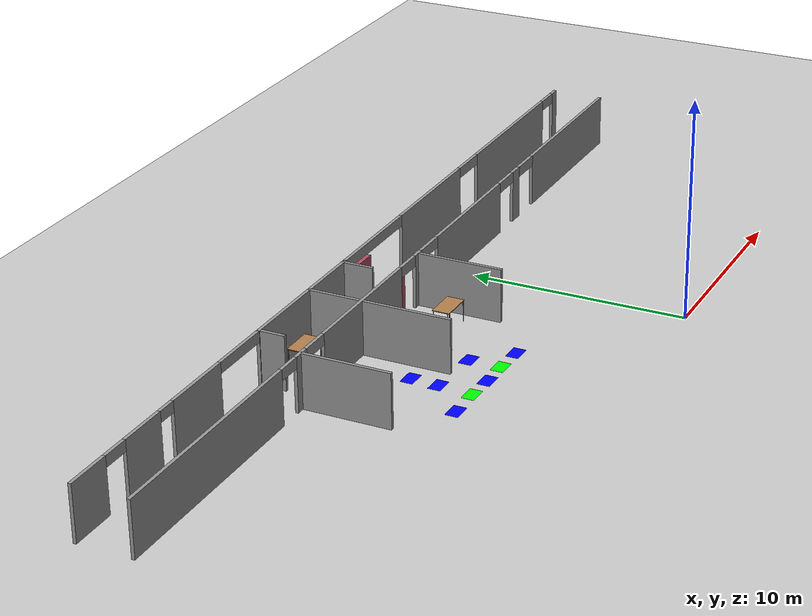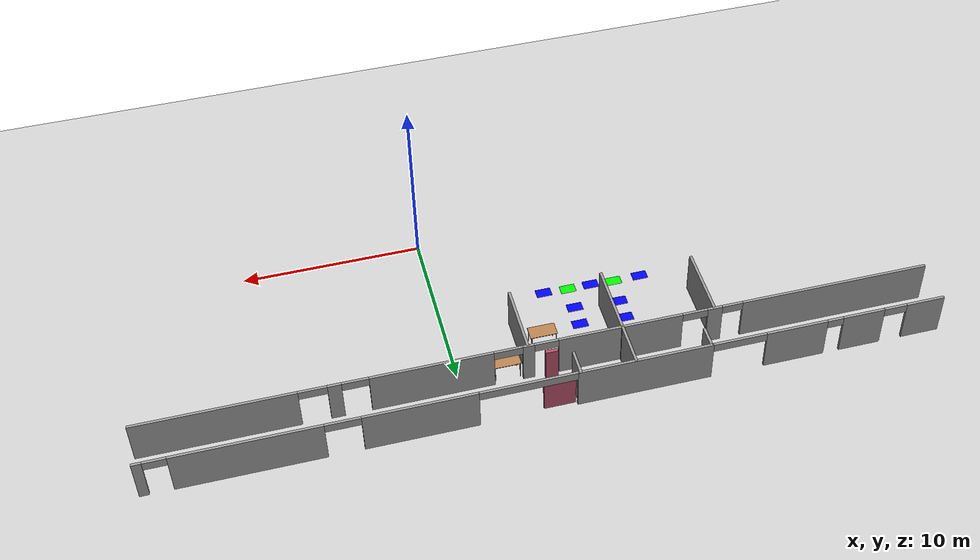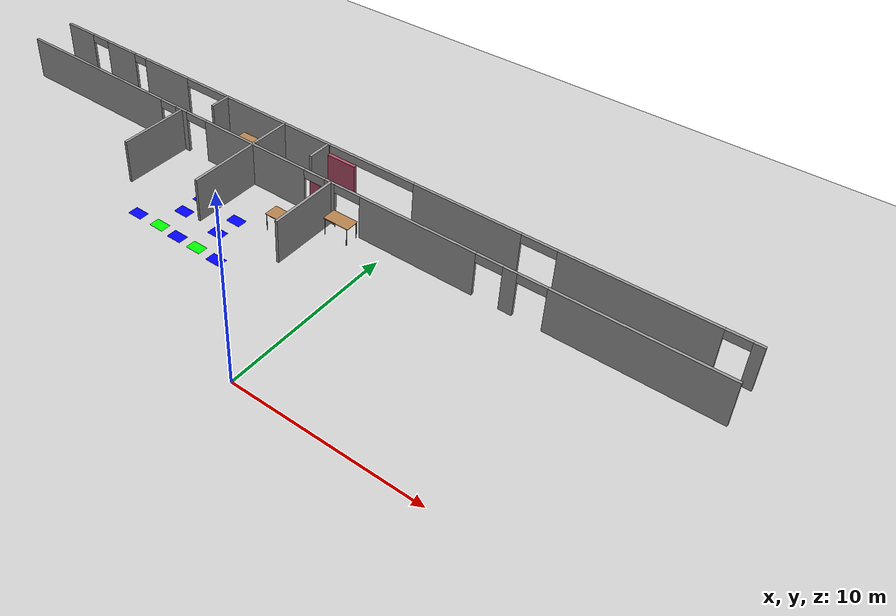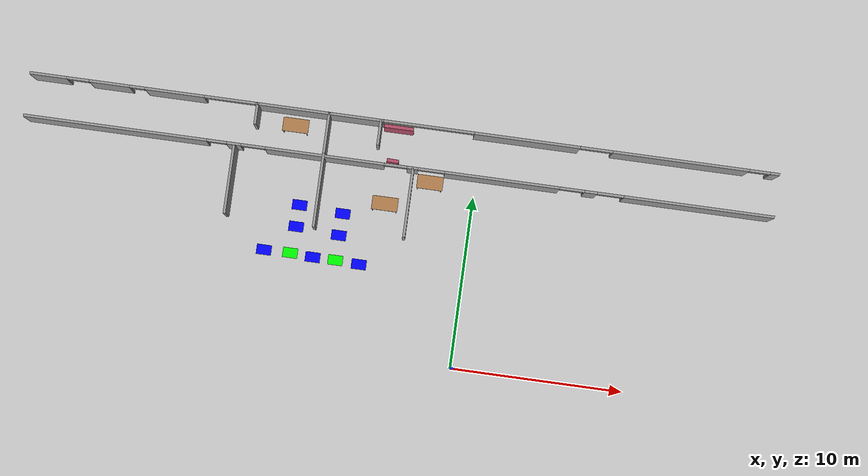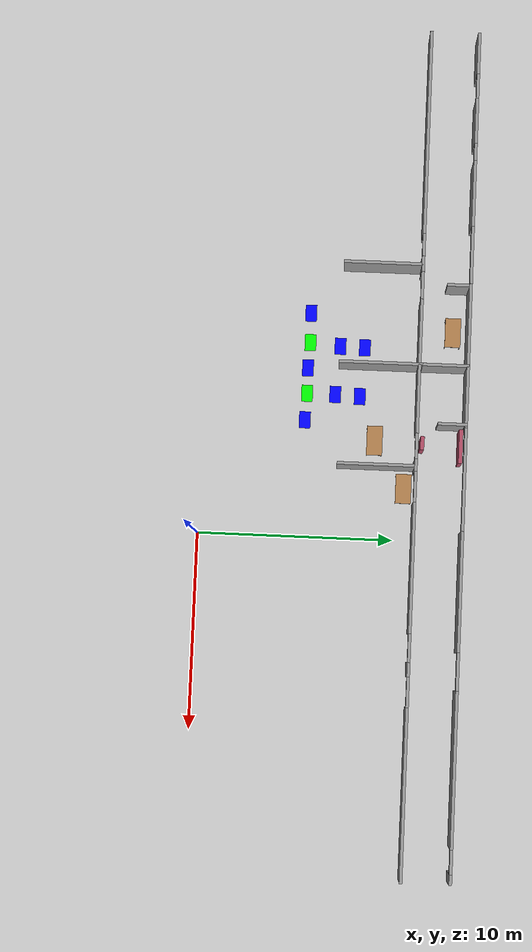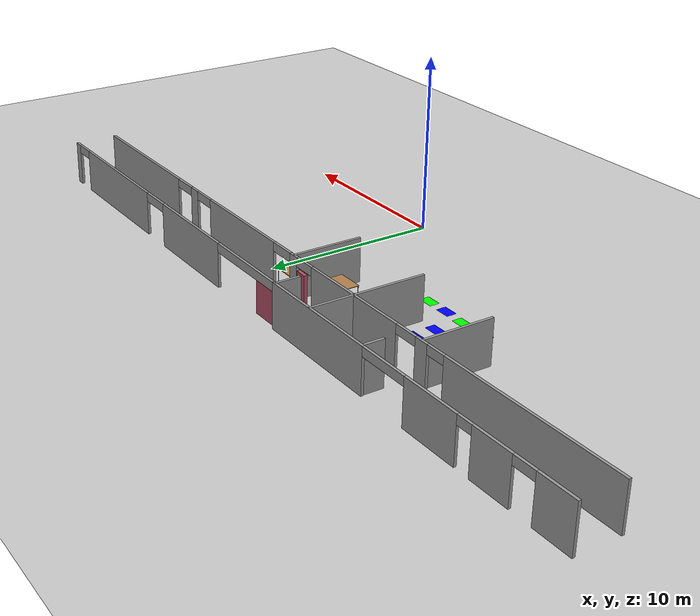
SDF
<sdf version="1.6">
 <world name="default">
  <model name="ground_plane">
   <pose>0 0 0.001 0 -0 0</pose>
   <static>1</static>
   <link name="link">
    <collision name="collision">
     <geometry><plane><normal>0 0 1</normal><size>100 100</size></plane></geometry>
     <surface><friction><ode><mu>100</mu><mu2>50</mu2></ode></friction></surface>
    </collision>
    <visual name="visual">
     <cast_shadows>0</cast_shadows>
     <geometry><plane><normal>0 0 1</normal><size>100 100</size></plane></geometry>
     <material>
      <script><uri>file://media/materials/scripts/gazebo.material</uri><name>Gazebo/Grey</name></script>
     </material>
    </visual>
   </link>
  </model>
  <model name="table_3">
   <static>1</static>
   <link name="link">
    <collision name="surface">
     <pose>0 0 1 0 -0 0</pose>
     <geometry><box><size>1.5 0.8 0.03</size></box></geometry>
     <surface><friction><ode><mu>0.6</mu><mu2>0.6</mu2></ode></friction></surface>
    </collision>
    <visual name="visual1">
     <pose>0 0 1 0 -0 0</pose>
     <geometry><box><size>1.5 0.8 0.03</size></box></geometry>
     <material>
      <script><uri>file://media/materials/scripts/gazebo.material</uri><name>Gazebo/Wood</name></script>
     </material>
    </visual>
    <collision name="front_left_leg">
     <pose>0.68 0.38 0.5 0 -0 0</pose>
     <geometry><cylinder><radius>0.02</radius><length>1</length></cylinder></geometry>
    </collision>
    <visual name="front_left_leg">
     <pose>0.68 0.38 0.5 0 -0 0</pose>
     <geometry><cylinder><radius>0.02</radius><length>1</length></cylinder></geometry>
     <material>
      <script><uri>file://media/materials/scripts/gazebo.material</uri><name>Gazebo/Grey</name></script>
     </material>
    </visual>
    <collision name="front_right_leg">
     <pose>0.68 -0.38 0.5 0 -0 0</pose>
     <geometry><cylinder><radius>0.02</radius><length>1</length></cylinder></geometry>
    </collision>
    <visual name="front_right_leg">
     <pose>0.68 -0.38 0.5 0 -0 0</pose>
     <geometry><cylinder><radius>0.02</radius><length>1</length></cylinder></geometry>
     <material>
      <script><uri>file://media/materials/scripts/gazebo.material</uri><name>Gazebo/Grey</name></script>
     </material>
    </visual>
    <collision name="back_right_leg">
     <pose>-0.68 -0.38 0.5 0 -0 0</pose>
     <geometry><cylinder><radius>0.02</radius><length>1</length></cylinder></geometry>
    </collision>
    <visual name="back_right_leg">
     <pose>-0.68 -0.38 0.5 0 -0 0</pose>
     <geometry><cylinder><radius>0.02</radius><length>1</length></cylinder></geometry>
     <material>
      <script><uri>file://media/materials/scripts/gazebo.material</uri><name>Gazebo/Grey</name></script>
     </material>
    </visual>
    <collision name="back_left_leg">
     <pose>-0.68 0.38 0.5 0 -0 0</pose>
     <geometry><cylinder><radius>0.02</radius><length>1</length></cylinder></geometry>
    </collision>
    <visual name="back_left_leg">
     <pose>-0.68 0.38 0.5 0 -0 0</pose>
     <geometry><cylinder><radius>0.02</radius><length>1</length></cylinder></geometry>
     <material>
      <script><uri>file://media/materials/scripts/gazebo.material</uri><name>Gazebo/Grey</name></script>
     </material>
    </visual>
   </link>
   <pose>-10.736 12.6995 0.001 0 -0 0</pose>
  </model>
  <model name="table_4">
   <static>1</static>
   <link name="link">
    <collision name="surface">
     <pose>0 0 1 0 -0 0</pose>
     <geometry><box><size>1.5 0.8 0.03</size></box></geometry>
     <surface><friction><ode><mu>0.6</mu><mu2>0.6</mu2></ode></friction></surface>
    </collision>
    <visual name="visual1">
     <pose>0 0 1 0 -0 0</pose>
     <geometry><box><size>1.5 0.8 0.03</size></box></geometry>
     <material>
      <script><uri>file://media/materials/scripts/gazebo.material</uri><name>Gazebo/Wood</name></script>
     </material>
    </visual>
    <collision name="front_left_leg">
     <pose>0.68 0.38 0.5 0 -0 0</pose>
     <geometry><cylinder><radius>0.02</radius><length>1</length></cylinder></geometry>
    </collision>
    <visual name="front_left_leg">
     <pose>0.68 0.38 0.5 0 -0 0</pose>
     <geometry><cylinder><radius>0.02</radius><length>1</length></cylinder></geometry>
     <material>
      <script><uri>file://media/materials/scripts/gazebo.material</uri><name>Gazebo/Grey</name></script>
     </material>
    </visual>
    <collision name="front_right_leg">
     <pose>0.68 -0.38 0.5 0 -0 0</pose>
     <geometry><cylinder><radius>0.02</radius><length>1</length></cylinder></geometry>
    </collision>
    <visual name="front_right_leg">
     <pose>0.68 -0.38 0.5 0 -0 0</pose>
     <geometry><cylinder><radius>0.02</radius><length>1</length></cylinder></geometry>
     <material>
      <script><uri>file://media/materials/scripts/gazebo.material</uri><name>Gazebo/Grey</name></script>
     </material>
    </visual>
    <collision name="back_right_leg">
     <pose>-0.68 -0.38 0.5 0 -0 0</pose>
     <geometry><cylinder><radius>0.02</radius><length>1</length></cylinder></geometry>
    </collision>
    <visual name="back_right_leg">
     <pose>-0.68 -0.38 0.5 0 -0 0</pose>
     <geometry><cylinder><radius>0.02</radius><length>1</length></cylinder></geometry>
     <material>
      <script><uri>file://media/materials/scripts/gazebo.material</uri><name>Gazebo/Grey</name></script>
     </material>
    </visual>
    <collision name="back_left_leg">
     <pose>-0.68 0.38 0.5 0 -0 0</pose>
     <geometry><cylinder><radius>0.02</radius><length>1</length></cylinder></geometry>
    </collision>
    <visual name="back_left_leg">
     <pose>-0.68 0.38 0.5 0 -0 0</pose>
     <geometry><cylinder><radius>0.02</radius><length>1</length></cylinder></geometry>
     <material>
      <script><uri>file://media/materials/scripts/gazebo.material</uri><name>Gazebo/Grey</name></script>
     </material>
    </visual>
   </link>
   <pose>-5.01771 8.89432 0.001 0 -0 0</pose>
  </model>
  <model name="table_7">
   <static>1</static>
   <link name="link">
    <collision name="surface">
     <pose>0 0 1 0 -0 0</pose>
     <geometry><box><size>1.5 0.8 0.03</size></box></geometry>
     <surface><friction><ode><mu>0.6</mu><mu2>0.6</mu2></ode></friction></surface>
    </collision>
    <visual name="visual1">
     <pose>0 0 1 0 -0 0</pose>
     <geometry><box><size>1.5 0.8 0.03</size></box></geometry>
     <material>
      <script><uri>file://media/materials/scripts/gazebo.material</uri><name>Gazebo/Wood</name></script>
     </material>
    </visual>
    <collision name="front_left_leg">
     <pose>0.68 0.38 0.5 0 -0 0</pose>
     <geometry><cylinder><radius>0.02</radius><length>1</length></cylinder></geometry>
    </collision>
    <visual name="front_left_leg">
     <pose>0.68 0.38 0.5 0 -0 0</pose>
     <geometry><cylinder><radius>0.02</radius><length>1</length></cylinder></geometry>
     <material>
      <script><uri>file://media/materials/scripts/gazebo.material</uri><name>Gazebo/Grey</name></script>
     </material>
    </visual>
    <collision name="front_right_leg">
     <pose>0.68 -0.38 0.5 0 -0 0</pose>
     <geometry><cylinder><radius>0.02</radius><length>1</length></cylinder></geometry>
    </collision>
    <visual name="front_right_leg">
     <pose>0.68 -0.38 0.5 0 -0 0</pose>
     <geometry><cylinder><radius>0.02</radius><length>1</length></cylinder></geometry>
     <material>
      <script><uri>file://media/materials/scripts/gazebo.material</uri><name>Gazebo/Grey</name></script>
     </material>
    </visual>
    <collision name="back_right_leg">
     <pose>-0.68 -0.38 0.5 0 -0 0</pose>
     <geometry><cylinder><radius>0.02</radius><length>1</length></cylinder></geometry>
    </collision>
    <visual name="back_right_leg">
     <pose>-0.68 -0.38 0.5 0 -0 0</pose>
     <geometry><cylinder><radius>0.02</radius><length>1</length></cylinder></geometry>
     <material>
      <script><uri>file://media/materials/scripts/gazebo.material</uri><name>Gazebo/Grey</name></script>
     </material>
    </visual>
    <collision name="back_left_leg">
     <pose>-0.68 0.38 0.5 0 -0 0</pose>
     <geometry><cylinder><radius>0.02</radius><length>1</length></cylinder></geometry>
    </collision>
    <visual name="back_left_leg">
     <pose>-0.68 0.38 0.5 0 -0 0</pose>
     <geometry><cylinder><radius>0.02</radius><length>1</length></cylinder></geometry>
     <material>
      <script><uri>file://media/materials/scripts/gazebo.material</uri><name>Gazebo/Grey</name></script>
     </material>
    </visual>
   </link>
   <pose>-2.6011 10.4538 0.001 0 -0 0</pose>
  </model>
  <model name="doorInside_10">
   <link name="link">
    <pose>0.712274 -0.220649 0.216958 0 -0 0</pose>
    <inertial>
     <mass>0.840612</mass>
     <inertia>
      <ixx>0.178476</ixx>
      <ixy>0</ixy>
      <ixz>0</ixz>
      <iyy>0.140406</iyy>
      <iyz>0</iyz>
      <izz>0.102032</izz>
     </inertia>
     <pose>0 0 0.001 0 -0 0</pose>
    </inertial>
    <visual name="visual">
     <geometry><box><size>0.675678 0.198843 2.05986</size></box></geometry>
     <material>
      <script><name>Gazebo/Grey</name><uri>file://media/materials/scripts/gazebo.material</uri></script>
      <ambient>0.7 0.3 0.4 1</ambient>
      <diffuse>0.7 0.7 0.7 1</diffuse>
      <specular>0.01 0.01 0.01 1</specular>
      <emissive>1 0 0 1</emissive>
      <shader type="vertex"><normal_map>__default__</normal_map></shader>
      <lighting>0</lighting>
     </material>
     <pose>0 0 0.001 0 -0 0</pose>
    </visual>
    <collision name="collision">
     <pose>0 0 0.001 0 -0 0</pose>
     <geometry><box><size>0.675678 0.198843 2.05986</size></box></geometry>
     <surface>
      <friction>
       <ode><mu>1</mu><mu2>1</mu2><fdir1>0 0 0</fdir1><slip1>0</slip1><slip2>0</slip2></ode>
       <torsional>
        <coefficient>1</coefficient>
        <patch_radius>0</patch_radius>
        <surface_radius>0</surface_radius>
        <use_patch_radius>1</use_patch_radius>
        <ode><slip>0</slip></ode>
       </torsional>
      </friction>
      <bounce><restitution_coefficient>0</restitution_coefficient><threshold>1e+06</threshold></bounce>
      <contact>
       <collide_without_contact>0</collide_without_contact>
       <collide_without_contact_bitmask>1</collide_without_contact_bitmask>
       <collide_bitmask>1</collide_bitmask>
       <ode>
        <soft_cfm>0</soft_cfm>
        <soft_erp>0.2</soft_erp>
        <kp>1e+13</kp>
        <kd>1</kd>
        <max_vel>0.01</max_vel>
        <min_depth>0</min_depth>
       </ode>
       <bullet>
        <split_impulse>1</split_impulse>
        <split_impulse_penetration_threshold>-0.01</split_impulse_penetration_threshold>
        <soft_cfm>0</soft_cfm>
        <soft_erp>0.2</soft_erp>
        <kp>1e+13</kp>
        <kd>1</kd>
       </bullet>
      </contact>
     </surface>
    </collision>
   </link>
   <static>0</static>
   <pose>-5.58854 11.5499 0.811964 1e-06 -1e-06 -0.037116</pose>
  </model>
  <model name="corridor_16">
   <link name="link">
    <pose>0 0 0.001 0 -0 0</pose>
    <inertial>
     <mass>0.0352517</mass>
     <inertia>
      <ixx>0.00099707</ixx>
      <ixy>0</ixy>
      <ixz>0</ixz>
      <iyy>0.00220147</iyy>
      <iyz>0</iyz>
      <izz>0.0031692</izz>
     </inertia>
     <pose>0 0 0.001 0 -0 0</pose>
    </inertial>
    <visual name="visual">
     <geometry><box><size>0.862743 0.578289 1e-06</size></box></geometry>
     <material>
      <script><name>Gazebo/Grey</name><uri>file://media/materials/scripts/gazebo.material</uri></script>
      <ambient>0 1 0 1</ambient>
      <diffuse>0 1 0 1</diffuse>
      <specular>0 1 0 1</specular>
      <emissive>0 1 0 1</emissive>
      <shader type="vertex"><normal_map>__default__</normal_map></shader>
     </material>
     <pose>0 0 0.001 0 -0 0</pose>
    </visual>
    <collision name="collision">
     <pose>0 0 0.001 0 -0 0</pose>
     <geometry><box><size>0.862743 0.578289 0.000477</size></box></geometry>
     <surface>
      <friction>
       <ode><mu>1</mu><mu2>1</mu2><fdir1>0 0 0</fdir1><slip1>0</slip1><slip2>0</slip2></ode>
       <torsional>
        <coefficient>1</coefficient>
        <patch_radius>0</patch_radius>
        <surface_radius>0</surface_radius>
        <use_patch_radius>1</use_patch_radius>
        <ode><slip>0</slip></ode>
       </torsional>
      </friction>
      <bounce><restitution_coefficient>0</restitution_coefficient><threshold>1e+06</threshold></bounce>
      <contact>
       <collide_without_contact>0</collide_without_contact>
       <collide_without_contact_bitmask>1</collide_without_contact_bitmask>
       <collide_bitmask>1</collide_bitmask>
       <ode>
        <soft_cfm>0</soft_cfm>
        <soft_erp>0.2</soft_erp>
        <kp>1e+13</kp>
        <kd>1</kd>
        <max_vel>0.01</max_vel>
        <min_depth>0</min_depth>
       </ode>
       <bullet>
        <split_impulse>1</split_impulse>
        <split_impulse_penetration_threshold>-0.01</split_impulse_penetration_threshold>
        <soft_cfm>0</soft_cfm>
        <soft_erp>0.2</soft_erp>
        <kp>1e+13</kp>
        <kd>1</kd>
       </bullet>
      </contact>
     </surface>
    </collision>
   </link>
   <static>1</static>
   <pose>-7.44314 5.32852 0 0 -0 0</pose>
  </model>
  <model name="intersection_26">
   <link name="link">
    <pose>0 0 0.001 0 -0 0</pose>
    <inertial>
     <mass>0.0352517</mass>
     <inertia>
      <ixx>0.000997067</ixx>
      <ixy>0</ixy>
      <ixz>0</ixz>
      <iyy>0.00220147</iyy>
      <iyz>0</iyz>
      <izz>0.0031692</izz>
     </inertia>
     <pose>0 0 0.001 0 -0 0</pose>
    </inertial>
    <visual name="visual">
     <geometry><box><size>0.862743 0.578289 1e-06</size></box></geometry>
     <material>
      <script><name>Gazebo/Grey</name><uri>file://media/materials/scripts/gazebo.material</uri></script>
      <ambient>0 0 1 1</ambient>
      <diffuse>0 0 1 1</diffuse>
      <specular>0 0 1 1</specular>
      <emissive>0 0 1 1</emissive>
      <shader type="vertex"><normal_map>__default__</normal_map></shader>
     </material>
     <pose>0 0 0.001 0 -0 0</pose>
    </visual>
    <collision name="collision">
     <pose>0 0 0.001 0 -0 0</pose>
     <geometry><box><size>0.862743 0.578289 0.000477</size></box></geometry>
     <surface>
      <friction>
       <ode><mu>1</mu><mu2>1</mu2><fdir1>0 0 0</fdir1><slip1>0</slip1><slip2>0</slip2></ode>
       <torsional>
        <coefficient>1</coefficient>
        <patch_radius>0</patch_radius>
        <surface_radius>0</surface_radius>
        <use_patch_radius>1</use_patch_radius>
        <ode><slip>0</slip></ode>
       </torsional>
      </friction>
      <bounce><restitution_coefficient>0</restitution_coefficient><threshold>1e+06</threshold></bounce>
      <contact>
       <collide_without_contact>0</collide_without_contact>
       <collide_without_contact_bitmask>1</collide_without_contact_bitmask>
       <collide_bitmask>1</collide_bitmask>
       <ode>
        <soft_cfm>0</soft_cfm>
        <soft_erp>0.2</soft_erp>
        <kp>1e+13</kp>
        <kd>1</kd>
        <max_vel>0.01</max_vel>
        <min_depth>0</min_depth>
       </ode>
       <bullet>
        <split_impulse>1</split_impulse>
        <split_impulse_penetration_threshold>-0.01</split_impulse_penetration_threshold>
        <soft_cfm>0</soft_cfm>
        <soft_erp>0.2</soft_erp>
        <kp>1e+13</kp>
        <kd>1</kd>
       </bullet>
      </contact>
     </surface>
    </collision>
   </link>
   <static>1</static>
   <pose>-7.44042 6.78439 0 0 -0 0</pose>
  </model>
  <model name="corridor_17">
   <link name="link">
    <pose>0 0 0.001 0 -0 0</pose>
    <inertial>
     <mass>0.0352517</mass>
     <inertia>
      <ixx>0.00099707</ixx>
      <ixy>0</ixy>
      <ixz>0</ixz>
      <iyy>0.00220147</iyy>
      <iyz>0</iyz>
      <izz>0.0031692</izz>
     </inertia>
     <pose>0 0 0.001 0 -0 0</pose>
    </inertial>
    <visual name="visual">
     <geometry><box><size>0.862743 0.578289 1e-06</size></box></geometry>
     <material>
      <script><name>Gazebo/Grey</name><uri>file://media/materials/scripts/gazebo.material</uri></script>
      <ambient>0 1 0 1</ambient>
      <diffuse>0 1 0 1</diffuse>
      <specular>0 1 0 1</specular>
      <emissive>0 1 0 1</emissive>
      <shader type="vertex"><normal_map>__default__</normal_map></shader>
     </material>
     <pose>0 0 0.001 0 -0 0</pose>
    </visual>
    <collision name="collision">
     <pose>0 0 0.001 0 -0 0</pose>
     <geometry><box><size>0.862743 0.578289 0.000477</size></box></geometry>
     <surface>
      <friction>
       <ode><mu>1</mu><mu2>1</mu2><fdir1>0 0 0</fdir1><slip1>0</slip1><slip2>0</slip2></ode>
       <torsional>
        <coefficient>1</coefficient>
        <patch_radius>0</patch_radius>
        <surface_radius>0</surface_radius>
        <use_patch_radius>1</use_patch_radius>
        <ode><slip>0</slip></ode>
       </torsional>
      </friction>
      <bounce><restitution_coefficient>0</restitution_coefficient><threshold>1e+06</threshold></bounce>
      <contact>
       <collide_without_contact>0</collide_without_contact>
       <collide_without_contact_bitmask>1</collide_without_contact_bitmask>
       <collide_bitmask>1</collide_bitmask>
       <ode>
        <soft_cfm>0</soft_cfm>
        <soft_erp>0.2</soft_erp>
        <kp>1e+13</kp>
        <kd>1</kd>
        <max_vel>0.01</max_vel>
        <min_depth>0</min_depth>
       </ode>
       <bullet>
        <split_impulse>1</split_impulse>
        <split_impulse_penetration_threshold>-0.01</split_impulse_penetration_threshold>
        <soft_cfm>0</soft_cfm>
        <soft_erp>0.2</soft_erp>
        <kp>1e+13</kp>
        <kd>1</kd>
       </bullet>
      </contact>
     </surface>
    </collision>
   </link>
   <static>1</static>
   <pose>-10.0982 5.39888 0 0 -0 0</pose>
  </model>
  <model name="intersection_27">
   <link name="link">
    <pose>0 0 0.001 0 -0 0</pose>
    <inertial>
     <mass>0.0352517</mass>
     <inertia>
      <ixx>0.000997067</ixx>
      <ixy>0</ixy>
      <ixz>0</ixz>
      <iyy>0.00220147</iyy>
      <iyz>0</iyz>
      <izz>0.0031692</izz>
     </inertia>
     <pose>0 0 0.001 0 -0 0</pose>
    </inertial>
    <visual name="visual">
     <geometry><box><size>0.862743 0.578289 1e-06</size></box></geometry>
     <material>
      <script><name>Gazebo/Grey</name><uri>file://media/materials/scripts/gazebo.material</uri></script>
      <ambient>0 0 1 1</ambient>
      <diffuse>0 0 1 1</diffuse>
      <specular>0 0 1 1</specular>
      <emissive>0 0 1 1</emissive>
      <shader type="vertex"><normal_map>__default__</normal_map></shader>
     </material>
     <pose>0 0 0.001 0 -0 0</pose>
    </visual>
    <collision name="collision">
     <pose>0 0 0.001 0 -0 0</pose>
     <geometry><box><size>0.862743 0.578289 0.000477</size></box></geometry>
     <surface>
      <friction>
       <ode><mu>1</mu><mu2>1</mu2><fdir1>0 0 0</fdir1><slip1>0</slip1><slip2>0</slip2></ode>
       <torsional>
        <coefficient>1</coefficient>
        <patch_radius>0</patch_radius>
        <surface_radius>0</surface_radius>
        <use_patch_radius>1</use_patch_radius>
        <ode><slip>0</slip></ode>
       </torsional>
      </friction>
      <bounce><restitution_coefficient>0</restitution_coefficient><threshold>1e+06</threshold></bounce>
      <contact>
       <collide_without_contact>0</collide_without_contact>
       <collide_without_contact_bitmask>1</collide_without_contact_bitmask>
       <collide_bitmask>1</collide_bitmask>
       <ode>
        <soft_cfm>0</soft_cfm>
        <soft_erp>0.2</soft_erp>
        <kp>1e+13</kp>
        <kd>1</kd>
        <max_vel>0.01</max_vel>
        <min_depth>0</min_depth>
       </ode>
       <bullet>
        <split_impulse>1</split_impulse>
        <split_impulse_penetration_threshold>-0.01</split_impulse_penetration_threshold>
        <soft_cfm>0</soft_cfm>
        <soft_erp>0.2</soft_erp>
        <kp>1e+13</kp>
        <kd>1</kd>
       </bullet>
      </contact>
     </surface>
    </collision>
   </link>
   <static>1</static>
   <pose>-9.96291 6.95576 0 0 -0 0</pose>
  </model>
  <model name="intersection_43">
   <link name="link">
    <pose>0 0 0.001 0 -0 0</pose>
    <inertial>
     <mass>0.0352517</mass>
     <inertia>
      <ixx>0.000997067</ixx>
      <ixy>0</ixy>
      <ixz>0</ixz>
      <iyy>0.00220147</iyy>
      <iyz>0</iyz>
      <izz>0.0031692</izz>
     </inertia>
     <pose>0 0 0.001 0 -0 0</pose>
    </inertial>
    <visual name="visual">
     <geometry><box><size>0.862743 0.578289 1e-06</size></box></geometry>
     <material>
      <script><name>Gazebo/Grey</name><uri>file://media/materials/scripts/gazebo.material</uri></script>
      <ambient>0 0 1 1</ambient>
      <diffuse>0 0 1 1</diffuse>
      <specular>0 0 1 1</specular>
      <emissive>0 0 1 1</emissive>
      <shader type="vertex"><normal_map>__default__</normal_map></shader>
     </material>
     <pose>0 0 0.001 0 -0 0</pose>
    </visual>
    <collision name="collision">
     <pose>0 0 0.001 0 -0 0</pose>
     <geometry><box><size>0.862743 0.578289 0.000477</size></box></geometry>
     <surface>
      <friction>
       <ode><mu>1</mu><mu2>1</mu2><fdir1>0 0 0</fdir1><slip1>0</slip1><slip2>0</slip2></ode>
       <torsional>
        <coefficient>1</coefficient>
        <patch_radius>0</patch_radius>
        <surface_radius>0</surface_radius>
        <use_patch_radius>1</use_patch_radius>
        <ode><slip>0</slip></ode>
       </torsional>
      </friction>
      <bounce><restitution_coefficient>0</restitution_coefficient><threshold>1e+06</threshold></bounce>
      <contact>
       <collide_without_contact>0</collide_without_contact>
       <collide_without_contact_bitmask>1</collide_without_contact_bitmask>
       <collide_bitmask>1</collide_bitmask>
       <ode>
        <soft_cfm>0</soft_cfm>
        <soft_erp>0.2</soft_erp>
        <kp>1e+13</kp>
        <kd>1</kd>
        <max_vel>0.01</max_vel>
        <min_depth>0</min_depth>
       </ode>
       <bullet>
        <split_impulse>1</split_impulse>
        <split_impulse_penetration_threshold>-0.01</split_impulse_penetration_threshold>
        <soft_cfm>0</soft_cfm>
        <soft_erp>0.2</soft_erp>
        <kp>1e+13</kp>
        <kd>1</kd>
       </bullet>
      </contact>
     </surface>
    </collision>
   </link>
   <static>1</static>
   <pose>-11.6322 5.37303 0 0 -0 0</pose>
  </model>
  <model name="intersection_44">
   <link name="link">
    <pose>0 0 0.001 0 -0 0</pose>
    <inertial>
     <mass>0.0352517</mass>
     <inertia>
      <ixx>0.000997067</ixx>
      <ixy>0</ixy>
      <ixz>0</ixz>
      <iyy>0.00220147</iyy>
      <iyz>0</iyz>
      <izz>0.0031692</izz>
     </inertia>
     <pose>0 0 0.001 0 -0 0</pose>
    </inertial>
    <visual name="visual">
     <geometry><box><size>0.862743 0.578289 1e-06</size></box></geometry>
     <material>
      <script><name>Gazebo/Grey</name><uri>file://media/materials/scripts/gazebo.material</uri></script>
      <ambient>0 0 1 1</ambient>
      <diffuse>0 0 1 1</diffuse>
      <specular>0 0 1 1</specular>
      <emissive>0 0 1 1</emissive>
      <shader type="vertex"><normal_map>__default__</normal_map></shader>
     </material>
     <pose>0 0 0.001 0 -0 0</pose>
    </visual>
    <collision name="collision">
     <pose>0 0 0.001 0 -0 0</pose>
     <geometry><box><size>0.862743 0.578289 0.000477</size></box></geometry>
     <surface>
      <friction>
       <ode><mu>1</mu><mu2>1</mu2><fdir1>0 0 0</fdir1><slip1>0</slip1><slip2>0</slip2></ode>
       <torsional>
        <coefficient>1</coefficient>
        <patch_radius>0</patch_radius>
        <surface_radius>0</surface_radius>
        <use_patch_radius>1</use_patch_radius>
        <ode><slip>0</slip></ode>
       </torsional>
      </friction>
      <bounce><restitution_coefficient>0</restitution_coefficient><threshold>1e+06</threshold></bounce>
      <contact>
       <collide_without_contact>0</collide_without_contact>
       <collide_without_contact_bitmask>1</collide_without_contact_bitmask>
       <collide_bitmask>1</collide_bitmask>
       <ode>
        <soft_cfm>0</soft_cfm>
        <soft_erp>0.2</soft_erp>
        <kp>1e+13</kp>
        <kd>1</kd>
        <max_vel>0.01</max_vel>
        <min_depth>0</min_depth>
       </ode>
       <bullet>
        <split_impulse>1</split_impulse>
        <split_impulse_penetration_threshold>-0.01</split_impulse_penetration_threshold>
        <soft_cfm>0</soft_cfm>
        <soft_erp>0.2</soft_erp>
        <kp>1e+13</kp>
        <kd>1</kd>
       </bullet>
      </contact>
     </surface>
    </collision>
   </link>
   <static>1</static>
   <pose>-8.76868 5.3199 0 0 -0 0</pose>
  </model>
  <model name="intersection">
   <link name="link">
    <pose>0 0 0.001 0 -0 0</pose>
    <inertial>
     <mass>0.0352517</mass>
     <inertia>
      <ixx>0.000997067</ixx>
      <ixy>0</ixy>
      <ixz>0</ixz>
      <iyy>0.00220147</iyy>
      <iyz>0</iyz>
      <izz>0.0031692</izz>
     </inertia>
     <pose>0 0 0.001 0 -0 0</pose>
    </inertial>
    <visual name="visual">
     <geometry><box><size>0.862743 0.578289 1e-06</size></box></geometry>
     <material>
      <script><name>Gazebo/Grey</name><uri>file://media/materials/scripts/gazebo.material</uri></script>
      <ambient>0 0 1 1</ambient>
      <diffuse>0 0 1 1</diffuse>
      <specular>0 0 1 1</specular>
      <emissive>0 0 1 1</emissive>
      <shader type="vertex"><normal_map>__default__</normal_map></shader>
     </material>
     <pose>0 0 0.001 0 -0 0</pose>
    </visual>
    <collision name="collision">
     <pose>0 0 0.001 0 -0 0</pose>
     <geometry><box><size>0.862743 0.578289 0.000477</size></box></geometry>
     <surface>
      <friction>
       <ode><mu>1</mu><mu2>1</mu2><fdir1>0 0 0</fdir1><slip1>0</slip1><slip2>0</slip2></ode>
       <torsional>
        <coefficient>1</coefficient>
        <patch_radius>0</patch_radius>
        <surface_radius>0</surface_radius>
        <use_patch_radius>1</use_patch_radius>
        <ode><slip>0</slip></ode>
       </torsional>
      </friction>
      <bounce><restitution_coefficient>0</restitution_coefficient><threshold>1e+06</threshold></bounce>
      <contact>
       <collide_without_contact>0</collide_without_contact>
       <collide_without_contact_bitmask>1</collide_without_contact_bitmask>
       <collide_bitmask>1</collide_bitmask>
       <ode>
        <soft_cfm>0</soft_cfm>
        <soft_erp>0.2</soft_erp>
        <kp>1e+13</kp>
        <kd>1</kd>
        <max_vel>0.01</max_vel>
        <min_depth>0</min_depth>
       </ode>
       <bullet>
        <split_impulse>1</split_impulse>
        <split_impulse_penetration_threshold>-0.01</split_impulse_penetration_threshold>
        <soft_cfm>0</soft_cfm>
        <soft_erp>0.2</soft_erp>
        <kp>1e+13</kp>
        <kd>1</kd>
       </bullet>
      </contact>
     </surface>
    </collision>
   </link>
   <static>1</static>
   <pose>-6.05755 5.26757 0 0 -0 0</pose>
  </model>
  <model name="Se1_cut">
   <pose>3.62364 13.9276 0 0 -0 0</pose>
   <link name="Wall_12">
    <pose>-8.15027 -2.91919 0 0 -0 0</pose>
    <visual name="Wall_12_Visual_0">
     <pose>-16.3333 0 1.25 0 -0 0</pose>
     <geometry><box><size>10.5834 0.15 2.5</size></box></geometry>
     <material>
      <script><uri>file://media/materials/scripts/gazebo.material</uri><name>Gazebo/Grey</name></script>
      <ambient>1 1 1 1</ambient>
     </material>
    </visual>
    <collision name="Wall_12_Collision_0">
     <geometry><box><size>10.5834 0.15 2.5</size></box></geometry>
     <pose>-16.3333 0 1.25 0 -0 0</pose>
    </collision>
    <visual name="Wall_12_Visual_1">
     <pose>-9.48534 0 1.25 0 -0 0</pose>
     <geometry><box><size>0.82277 0.15 2.5</size></box></geometry>
     <material>
      <script><uri>file://media/materials/scripts/gazebo.material</uri><name>Gazebo/Grey</name></script>
      <ambient>1 1 1 1</ambient>
     </material>
    </visual>
    <collision name="Wall_12_Collision_1">
     <geometry><box><size>0.82277 0.15 2.5</size></box></geometry>
     <pose>-9.48534 0 1.25 0 -0 0</pose>
    </collision>
    <visual name="Wall_12_Visual_2">
     <pose>-4.24018 0 1.25 0 -0 0</pose>
     <geometry><box><size>6.85313 0.15 2.5</size></box></geometry>
     <material>
      <script><uri>file://media/materials/scripts/gazebo.material</uri><name>Gazebo/Grey</name></script>
      <ambient>1 1 1 1</ambient>
     </material>
    </visual>
    <collision name="Wall_12_Collision_2">
     <geometry><box><size>6.85313 0.15 2.5</size></box></geometry>
     <pose>-4.24018 0 1.25 0 -0 0</pose>
    </collision>
    <visual name="Wall_12_Visual_3">
     <pose>0.816046 0 1.25 0 -0 0</pose>
     <geometry><box><size>0.62662 0.15 2.5</size></box></geometry>
     <material>
      <script><uri>file://media/materials/scripts/gazebo.material</uri><name>Gazebo/Grey</name></script>
      <ambient>1 1 1 1</ambient>
     </material>
    </visual>
    <collision name="Wall_12_Collision_3">
     <geometry><box><size>0.62662 0.15 2.5</size></box></geometry>
     <pose>0.816046 0 1.25 0 -0 0</pose>
    </collision>
    <visual name="Wall_12_Visual_4">
     <pose>5.98559 0 1.25 0 -0 0</pose>
     <geometry><box><size>6.61716 0.15 2.5</size></box></geometry>
     <material>
      <script><uri>file://media/materials/scripts/gazebo.material</uri><name>Gazebo/Grey</name></script>
      <ambient>1 1 1 1</ambient>
     </material>
    </visual>
    <collision name="Wall_12_Collision_4">
     <geometry><box><size>6.61716 0.15 2.5</size></box></geometry>
     <pose>5.98559 0 1.25 0 -0 0</pose>
    </collision>
    <visual name="Wall_12_Visual_5">
     <pose>11.0915 0 1.25 0 -0 0</pose>
     <geometry><box><size>0.730708 0.15 2.5</size></box></geometry>
     <material>
      <script><uri>file://media/materials/scripts/gazebo.material</uri><name>Gazebo/Grey</name></script>
      <ambient>1 1 1 1</ambient>
     </material>
    </visual>
    <collision name="Wall_12_Collision_5">
     <geometry><box><size>0.730708 0.15 2.5</size></box></geometry>
     <pose>11.0915 0 1.25 0 -0 0</pose>
    </collision>
    <visual name="Wall_12_Visual_6">
     <pose>17.3032 0 1.25 0 -0 0</pose>
     <geometry><box><size>8.64359 0.15 2.5</size></box></geometry>
     <material>
      <script><uri>file://media/materials/scripts/gazebo.material</uri><name>Gazebo/Grey</name></script>
      <ambient>1 1 1 1</ambient>
     </material>
    </visual>
    <collision name="Wall_12_Collision_6">
     <geometry><box><size>8.64359 0.15 2.5</size></box></geometry>
     <pose>17.3032 0 1.25 0 -0 0</pose>
    </collision>
    <visual name="Wall_12_Visual_7">
     <pose>-10.4692 0 2.25 0 -0 0</pose>
     <geometry><box><size>1.14486 0.15 0.5</size></box></geometry>
     <material>
      <script><uri>file://media/materials/scripts/gazebo.material</uri><name>Gazebo/Grey</name></script>
      <ambient>1 1 1 1</ambient>
     </material>
    </visual>
    <collision name="Wall_12_Collision_7">
     <geometry><box><size>1.14486 0.15 0.5</size></box></geometry>
     <pose>-10.4692 0 2.25 0 -0 0</pose>
    </collision>
    <visual name="Wall_12_Visual_8">
     <pose>-8.37035 0 2.25 0 -0 0</pose>
     <geometry><box><size>1.40721 0.15 0.5</size></box></geometry>
     <material>
      <script><uri>file://media/materials/scripts/gazebo.material</uri><name>Gazebo/Grey</name></script>
      <ambient>1 1 1 1</ambient>
     </material>
    </visual>
    <collision name="Wall_12_Collision_8">
     <geometry><box><size>1.40721 0.15 0.5</size></box></geometry>
     <pose>-8.37035 0 2.25 0 -0 0</pose>
    </collision>
    <visual name="Wall_12_Visual_9">
     <pose>-0.155439 0 2.25 0 -0 0</pose>
     <geometry><box><size>1.31635 0.15 0.5</size></box></geometry>
     <material>
      <script><uri>file://media/materials/scripts/gazebo.material</uri><name>Gazebo/Grey</name></script>
      <ambient>1 1 1 1</ambient>
     </material>
    </visual>
    <collision name="Wall_12_Collision_9">
     <geometry><box><size>1.31635 0.15 0.5</size></box></geometry>
     <pose>-0.155439 0 2.25 0 -0 0</pose>
    </collision>
    <visual name="Wall_12_Visual_10">
     <pose>1.90318 0 2.25 0 -0 0</pose>
     <geometry><box><size>1.54766 0.15 0.5</size></box></geometry>
     <material>
      <script><uri>file://media/materials/scripts/gazebo.material</uri><name>Gazebo/Grey</name></script>
      <ambient>1 1 1 1</ambient>
     </material>
    </visual>
    <collision name="Wall_12_Collision_10">
     <geometry><box><size>1.54766 0.15 0.5</size></box></geometry>
     <pose>1.90318 0 2.25 0 -0 0</pose>
    </collision>
    <visual name="Wall_12_Visual_11">
     <pose>10.0102 0 2.25 0 -0 0</pose>
     <geometry><box><size>1.432 0.15 0.5</size></box></geometry>
     <material>
      <script><uri>file://media/materials/scripts/gazebo.material</uri><name>Gazebo/Grey</name></script>
      <ambient>1 1 1 1</ambient>
     </material>
    </visual>
    <collision name="Wall_12_Collision_11">
     <geometry><box><size>1.432 0.15 0.5</size></box></geometry>
     <pose>10.0102 0 2.25 0 -0 0</pose>
    </collision>
    <visual name="Wall_12_Visual_12">
     <pose>12.2191 0 2.25 0 -0 0</pose>
     <geometry><box><size>1.52453 0.15 0.5</size></box></geometry>
     <material>
      <script><uri>file://media/materials/scripts/gazebo.material</uri><name>Gazebo/Grey</name></script>
      <ambient>1 1 1 1</ambient>
     </material>
    </visual>
    <collision name="Wall_12_Collision_12">
     <geometry><box><size>1.52453 0.15 0.5</size></box></geometry>
     <pose>12.2191 0 2.25 0 -0 0</pose>
    </collision>
   </link>
   <link name="Wall_15">
    <pose>-8.15027 -0.45807 0 0 -0 0</pose>
    <visual name="Wall_15_Visual_0">
     <pose>-20.5479 0 1.25 0 -0 0</pose>
     <geometry><box><size>2.15424 0.15 2.5</size></box></geometry>
     <material>
      <script><uri>file://media/materials/scripts/gazebo.material</uri><name>Gazebo/Grey</name></script>
      <ambient>1 1 1 1</ambient>
     </material>
    </visual>
    <collision name="Wall_15_Collision_0">
     <geometry><box><size>2.15424 0.15 2.5</size></box></geometry>
     <pose>-20.5479 0 1.25 0 -0 0</pose>
    </collision>
    <visual name="Wall_15_Visual_1">
     <pose>-17.0143 0 1.25 0 -0 0</pose>
     <geometry><box><size>2.34337 0.15 2.5</size></box></geometry>
     <material>
      <script><uri>file://media/materials/scripts/gazebo.material</uri><name>Gazebo/Grey</name></script>
      <ambient>1 1 1 1</ambient>
     </material>
    </visual>
    <collision name="Wall_15_Collision_1">
     <geometry><box><size>2.34337 0.15 2.5</size></box></geometry>
     <pose>-17.0143 0 1.25 0 -0 0</pose>
    </collision>
    <visual name="Wall_15_Visual_2">
     <pose>-13.2326 0 1.25 0 -0 0</pose>
     <geometry><box><size>3.42005 0.15 2.5</size></box></geometry>
     <material>
      <script><uri>file://media/materials/scripts/gazebo.material</uri><name>Gazebo/Grey</name></script>
      <ambient>1 1 1 1</ambient>
     </material>
    </visual>
    <collision name="Wall_15_Collision_2">
     <geometry><box><size>3.42005 0.15 2.5</size></box></geometry>
     <pose>-13.2326 0 1.25 0 -0 0</pose>
    </collision>
    <visual name="Wall_15_Visual_3">
     <pose>-4.87122 0 1.25 0 -0 0</pose>
     <geometry><box><size>7.37503 0.15 2.5</size></box></geometry>
     <material>
      <script><uri>file://media/materials/scripts/gazebo.material</uri><name>Gazebo/Grey</name></script>
      <ambient>1 1 1 1</ambient>
     </material>
    </visual>
    <collision name="Wall_15_Collision_3">
     <geometry><box><size>7.37503 0.15 2.5</size></box></geometry>
     <pose>-4.87122 0 1.25 0 -0 0</pose>
    </collision>
    <visual name="Wall_15_Visual_4">
     <pose>7.10743 0 1.25 0 -0 0</pose>
     <geometry><box><size>6.08516 0.15 2.5</size></box></geometry>
     <material>
      <script><uri>file://media/materials/scripts/gazebo.material</uri><name>Gazebo/Grey</name></script>
      <ambient>1 1 1 1</ambient>
     </material>
    </visual>
    <collision name="Wall_15_Collision_4">
     <geometry><box><size>6.08516 0.15 2.5</size></box></geometry>
     <pose>7.10743 0 1.25 0 -0 0</pose>
    </collision>
    <visual name="Wall_15_Visual_5">
     <pose>15.9605 0 1.25 0 -0 0</pose>
     <geometry><box><size>7.83181 0.15 2.5</size></box></geometry>
     <material>
      <script><uri>file://media/materials/scripts/gazebo.material</uri><name>Gazebo/Grey</name></script>
      <ambient>1 1 1 1</ambient>
     </material>
    </visual>
    <collision name="Wall_15_Collision_5">
     <geometry><box><size>7.83181 0.15 2.5</size></box></geometry>
     <pose>15.9605 0 1.25 0 -0 0</pose>
    </collision>
    <visual name="Wall_15_Visual_6">
     <pose>21.3626 0 1.25 0 -0 0</pose>
     <geometry><box><size>0.524744 0.15 2.5</size></box></geometry>
     <material>
      <script><uri>file://media/materials/scripts/gazebo.material</uri><name>Gazebo/Grey</name></script>
      <ambient>1 1 1 1</ambient>
     </material>
    </visual>
    <collision name="Wall_15_Collision_6">
     <geometry><box><size>0.524744 0.15 2.5</size></box></geometry>
     <pose>21.3626 0 1.25 0 -0 0</pose>
    </collision>
    <visual name="Wall_15_Visual_7">
     <pose>-18.8284 0 2.25 0 -0 0</pose>
     <geometry><box><size>1.28478 0.15 0.5</size></box></geometry>
     <material>
      <script><uri>file://media/materials/scripts/gazebo.material</uri><name>Gazebo/Grey</name></script>
      <ambient>1 1 1 1</ambient>
     </material>
    </visual>
    <collision name="Wall_15_Collision_7">
     <geometry><box><size>1.28478 0.15 0.5</size></box></geometry>
     <pose>-18.8284 0 2.25 0 -0 0</pose>
    </collision>
    <visual name="Wall_15_Visual_8">
     <pose>-15.3926 0 2.25 0 -0 0</pose>
     <geometry><box><size>0.9 0.15 0.5</size></box></geometry>
     <material>
      <script><uri>file://media/materials/scripts/gazebo.material</uri><name>Gazebo/Grey</name></script>
      <ambient>1 1 1 1</ambient>
     </material>
    </visual>
    <collision name="Wall_15_Collision_8">
     <geometry><box><size>0.9 0.15 0.5</size></box></geometry>
     <pose>-15.3926 0 2.25 0 -0 0</pose>
    </collision>
    <visual name="Wall_15_Visual_9">
     <pose>-10.0406 0 2.25 0 -0 0</pose>
     <geometry><box><size>2.96383 0.15 0.5</size></box></geometry>
     <material>
      <script><uri>file://media/materials/scripts/gazebo.material</uri><name>Gazebo/Grey</name></script>
      <ambient>1 1 1 1</ambient>
     </material>
    </visual>
    <collision name="Wall_15_Collision_9">
     <geometry><box><size>2.96383 0.15 0.5</size></box></geometry>
     <pose>-10.0406 0 2.25 0 -0 0</pose>
    </collision>
    <visual name="Wall_15_Visual_10">
     <pose>1.44057 0 2.25 0 -0 0</pose>
     <geometry><box><size>5.24855 0.15 0.5</size></box></geometry>
     <material>
      <script><uri>file://media/materials/scripts/gazebo.material</uri><name>Gazebo/Grey</name></script>
      <ambient>1 1 1 1</ambient>
     </material>
    </visual>
    <collision name="Wall_15_Collision_10">
     <geometry><box><size>5.24855 0.15 0.5</size></box></geometry>
     <pose>1.44057 0 2.25 0 -0 0</pose>
    </collision>
    <visual name="Wall_15_Visual_11">
     <pose>11.0973 0 2.25 0 -0 0</pose>
     <geometry><box><size>1.89462 0.15 0.5</size></box></geometry>
     <material>
      <script><uri>file://media/materials/scripts/gazebo.material</uri><name>Gazebo/Grey</name></script>
      <ambient>1 1 1 1</ambient>
     </material>
    </visual>
    <collision name="Wall_15_Collision_11">
     <geometry><box><size>1.89462 0.15 0.5</size></box></geometry>
     <pose>11.0973 0 2.25 0 -0 0</pose>
    </collision>
    <visual name="Wall_15_Visual_12">
     <pose>20.4883 0 2.25 0 -0 0</pose>
     <geometry><box><size>1.22383 0.15 0.5</size></box></geometry>
     <material>
      <script><uri>file://media/materials/scripts/gazebo.material</uri><name>Gazebo/Grey</name></script>
      <ambient>1 1 1 1</ambient>
     </material>
    </visual>
    <collision name="Wall_15_Collision_12">
     <geometry><box><size>1.22383 0.15 0.5</size></box></geometry>
     <pose>20.4883 0 2.25 0 -0 0</pose>
    </collision>
   </link>
   <link name="Wall_27">
    <collision name="Wall_27_Collision">
     <geometry><box><size>1.25 0.15 2.5</size></box></geometry>
     <pose>0 0 1.25 0 -0 0</pose>
    </collision>
    <visual name="Wall_27_Visual">
     <pose>0 0 1.25 0 -0 0</pose>
     <geometry><box><size>1.25 0.15 2.5</size></box></geometry>
     <material>
      <script><uri>file://media/materials/scripts/gazebo.material</uri><name>Gazebo/Grey</name></script>
      <ambient>1 1 1 1</ambient>
     </material>
    </visual>
    <pose>-16.601 -1.02852 0 0 0 -1.5708</pose>
   </link>
   <link name="Wall_29">
    <collision name="Wall_29_Collision">
     <geometry><box><size>2.5 0.15 2.5</size></box></geometry>
     <pose>0 0 1.25 0 -0 0</pose>
    </collision>
    <visual name="Wall_29_Visual">
     <pose>0 0 1.25 0 -0 0</pose>
     <geometry><box><size>2.5 0.15 2.5</size></box></geometry>
     <material>
      <script><uri>file://media/materials/scripts/gazebo.material</uri><name>Gazebo/Grey</name></script>
      <ambient>1 1 1 1</ambient>
     </material>
    </visual>
    <pose>-12.471 -1.66352 0 0 0 -1.5708</pose>
   </link>
   <link name="Wall_31">
    <collision name="Wall_31_Collision">
     <geometry><box><size>1.5 0.15 2.5</size></box></geometry>
     <pose>0 0 1.25 0 -0 0</pose>
    </collision>
    <visual name="Wall_31_Visual">
     <pose>0 0 1.25 0 -0 0</pose>
     <geometry><box><size>1.5 0.15 2.5</size></box></geometry>
     <material>
      <script><uri>file://media/materials/scripts/gazebo.material</uri><name>Gazebo/Grey</name></script>
      <ambient>1 1 1 1</ambient>
     </material>
    </visual>
    <pose>-9.481 -1.13352 0 0 0 -1.5708</pose>
   </link>
   <link name="Wall_89">
    <collision name="Wall_89_Collision">
     <geometry><box><size>4 0.15 2.5</size></box></geometry>
     <pose>0 0 1.25 0 -0 0</pose>
    </collision>
    <visual name="Wall_89_Visual">
     <pose>0 0 1.25 0 -0 0</pose>
     <geometry><box><size>4 0.15 2.5</size></box></geometry>
     <material>
      <script><uri>file://media/materials/scripts/gazebo.material</uri><name>Gazebo/Grey</name></script>
      <ambient>1 1 1 1</ambient>
     </material>
    </visual>
    <pose>-17.6091 -4.94228 0 0 0 -1.5708</pose>
   </link>
   <link name="Wall_91">
    <collision name="Wall_91_Collision">
     <geometry><box><size>4.25 0.15 2.5</size></box></geometry>
     <pose>0 0 1.25 0 -0 0</pose>
    </collision>
    <visual name="Wall_91_Visual">
     <pose>0 0 1.25 0 -0 0</pose>
     <geometry><box><size>4.25 0.15 2.5</size></box></geometry>
     <material>
      <script><uri>file://media/materials/scripts/gazebo.material</uri><name>Gazebo/Grey</name></script>
      <ambient>1 1 1 1</ambient>
     </material>
    </visual>
    <pose>-12.471 -4.88852 0 0 0 -1.5708</pose>
   </link>
   <link name="Wall_93">
    <collision name="Wall_93_Collision">
     <geometry><box><size>4 0.15 2.5</size></box></geometry>
     <pose>0 0 1.25 0 -0 0</pose>
    </collision>
    <visual name="Wall_93_Visual">
     <pose>0 0 1.25 0 -0 0</pose>
     <geometry><box><size>4 0.15 2.5</size></box></geometry>
     <material>
      <script><uri>file://media/materials/scripts/gazebo.material</uri><name>Gazebo/Grey</name></script>
      <ambient>1 1 1 1</ambient>
     </material>
    </visual>
    <pose>-7.29761 -4.91186 0 0 0 -1.5708</pose>
   </link>
   <static>1</static>
  </model>
  <model name="doorOutside_11">
   <link name="link">
    <pose>0.155539 -0.366282 0.216958 0 -0 0</pose>
    <inertial>
     <mass>2.13199</mass>
     <inertia>
      <ixx>0.452656</ixx>
      <ixy>0</ixy>
      <ixz>0</ixz>
      <iyy>0.796738</iyy>
      <iyz>0</iyz>
      <izz>0.699414</izz>
     </inertia>
    </inertial>
    <visual name="visual">
     <geometry><box><size>1.71368 0.198843 2.05986</size></box></geometry>
     <material>
      <script><name>Gazebo/Grey</name><uri>file://media/materials/scripts/gazebo.material</uri></script>
      <ambient>0.7 0.3 0.4 1</ambient>
      <diffuse>0.7 0.7 0.7 1</diffuse>
      <specular>0.01 0.01 0.01 1</specular>
      <emissive>0 0 0 1</emissive>
      <shader type="vertex"><normal_map>__default__</normal_map></shader>
      <lighting>0</lighting>
     </material>
    </visual>
    <collision name="collision">
     <geometry><box><size>1.71368 0.198843 2.05986</size></box></geometry>
     <surface>
      <friction>
       <ode><mu>1</mu><mu2>1</mu2><fdir1>0 0 0</fdir1><slip1>0</slip1><slip2>0</slip2></ode>
       <torsional>
        <coefficient>1</coefficient>
        <patch_radius>0</patch_radius>
        <surface_radius>0</surface_radius>
        <use_patch_radius>1</use_patch_radius>
        <ode><slip>0</slip></ode>
       </torsional>
      </friction>
      <bounce><restitution_coefficient>0</restitution_coefficient><threshold>1e+06</threshold></bounce>
      <contact>
       <collide_without_contact>0</collide_without_contact>
       <collide_without_contact_bitmask>1</collide_without_contact_bitmask>
       <collide_bitmask>1</collide_bitmask>
       <ode>
        <soft_cfm>0</soft_cfm>
        <soft_erp>0.2</soft_erp>
        <kp>1e+13</kp>
        <kd>1</kd>
        <max_vel>0.01</max_vel>
        <min_depth>0</min_depth>
       </ode>
       <bullet>
        <split_impulse>1</split_impulse>
        <split_impulse_penetration_threshold>-0.01</split_impulse_penetration_threshold>
        <soft_cfm>0</soft_cfm>
        <soft_erp>0.2</soft_erp>
        <kp>1e+13</kp>
        <kd>1</kd>
       </bullet>
      </contact>
     </surface>
    </collision>
   </link>
   <static>0</static>
   <pose>-4.94281 13.6209 0.812968 -1e-06 5e-06 0.00026</pose>
  </model>
  <model name="intersection_33_clone_9">
   <link name="link">
    <pose>0 0 0.001 0 -0 0</pose>
    <inertial>
     <mass>0.0352517</mass>
     <inertia>
      <ixx>0.000997067</ixx>
      <ixy>0</ixy>
      <ixz>0</ixz>
      <iyy>0.00220147</iyy>
      <iyz>0</iyz>
      <izz>0.0031692</izz>
     </inertia>
     <pose>0 0 0.001 0 -0 0</pose>
    </inertial>
    <visual name="visual">
     <geometry><box><size>0.862743 0.578289 1e-06</size></box></geometry>
     <material>
      <script><name>Gazebo/Grey</name><uri>file://media/materials/scripts/gazebo.material</uri></script>
      <ambient>0 0 1 1</ambient>
      <diffuse>0 0 1 1</diffuse>
      <specular>0 0 1 1</specular>
      <emissive>0 0 1 1</emissive>
      <shader type="vertex"><normal_map>__default__</normal_map></shader>
     </material>
     <pose>0 0 0.001 0 -0 0</pose>
    </visual>
    <collision name="collision">
     <pose>0 0 0.001 0 -0 0</pose>
     <geometry><box><size>0.862743 0.578289 0.000477</size></box></geometry>
     <surface>
      <friction>
       <ode><mu>1</mu><mu2>1</mu2><fdir1>0 0 0</fdir1><slip1>0</slip1><slip2>0</slip2></ode>
       <torsional>
        <coefficient>1</coefficient>
        <patch_radius>0</patch_radius>
        <surface_radius>0</surface_radius>
        <use_patch_radius>1</use_patch_radius>
        <ode><slip>0</slip></ode>
       </torsional>
      </friction>
      <bounce><restitution_coefficient>0</restitution_coefficient><threshold>1e+06</threshold></bounce>
      <contact>
       <collide_without_contact>0</collide_without_contact>
       <collide_without_contact_bitmask>1</collide_without_contact_bitmask>
       <collide_bitmask>1</collide_bitmask>
       <ode>
        <soft_cfm>0</soft_cfm>
        <soft_erp>0.2</soft_erp>
        <kp>1e+13</kp>
        <kd>1</kd>
        <max_vel>0.01</max_vel>
        <min_depth>0</min_depth>
       </ode>
       <bullet>
        <split_impulse>1</split_impulse>
        <split_impulse_penetration_threshold>-0.01</split_impulse_penetration_threshold>
        <soft_cfm>0</soft_cfm>
        <soft_erp>0.2</soft_erp>
        <kp>1e+13</kp>
        <kd>1</kd>
       </bullet>
      </contact>
     </surface>
    </collision>
   </link>
   <static>1</static>
   <pose>-7.38002 8.06093 0.011897 0 -0 0</pose>
  </model>
  <model name="intersection_33_clone_10">
   <link name="link">
    <pose>0 0 0.001 0 -0 0</pose>
    <inertial>
     <mass>0.0352517</mass>
     <inertia>
      <ixx>0.000997067</ixx>
      <ixy>0</ixy>
      <ixz>0</ixz>
      <iyy>0.00220147</iyy>
      <iyz>0</iyz>
      <izz>0.0031692</izz>
     </inertia>
     <pose>0 0 0.001 0 -0 0</pose>
    </inertial>
    <visual name="visual">
     <geometry><box><size>0.862743 0.578289 1e-06</size></box></geometry>
     <material>
      <script><name>Gazebo/Grey</name><uri>file://media/materials/scripts/gazebo.material</uri></script>
      <ambient>0 0 1 1</ambient>
      <diffuse>0 0 1 1</diffuse>
      <specular>0 0 1 1</specular>
      <emissive>0 0 1 1</emissive>
      <shader type="vertex"><normal_map>__default__</normal_map></shader>
     </material>
     <pose>0 0 0.001 0 -0 0</pose>
    </visual>
    <collision name="collision">
     <pose>0 0 0.001 0 -0 0</pose>
     <geometry><box><size>0.862743 0.578289 0.000477</size></box></geometry>
     <surface>
      <friction>
       <ode><mu>1</mu><mu2>1</mu2><fdir1>0 0 0</fdir1><slip1>0</slip1><slip2>0</slip2></ode>
       <torsional>
        <coefficient>1</coefficient>
        <patch_radius>0</patch_radius>
        <surface_radius>0</surface_radius>
        <use_patch_radius>1</use_patch_radius>
        <ode><slip>0</slip></ode>
       </torsional>
      </friction>
      <bounce><restitution_coefficient>0</restitution_coefficient><threshold>1e+06</threshold></bounce>
      <contact>
       <collide_without_contact>0</collide_without_contact>
       <collide_without_contact_bitmask>1</collide_without_contact_bitmask>
       <collide_bitmask>1</collide_bitmask>
       <ode>
        <soft_cfm>0</soft_cfm>
        <soft_erp>0.2</soft_erp>
        <kp>1e+13</kp>
        <kd>1</kd>
        <max_vel>0.01</max_vel>
        <min_depth>0</min_depth>
       </ode>
       <bullet>
        <split_impulse>1</split_impulse>
        <split_impulse_penetration_threshold>-0.01</split_impulse_penetration_threshold>
        <soft_cfm>0</soft_cfm>
        <soft_erp>0.2</soft_erp>
        <kp>1e+13</kp>
        <kd>1</kd>
       </bullet>
      </contact>
     </surface>
    </collision>
   </link>
   <static>1</static>
   <pose>-9.93417 8.22566 0.011897 0 -0 0</pose>
  </model>
 </world>
</sdf>
